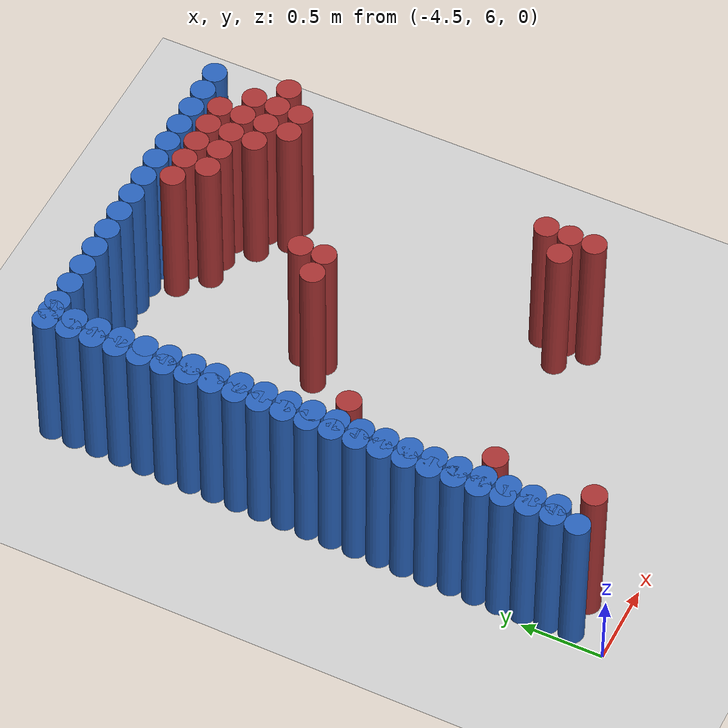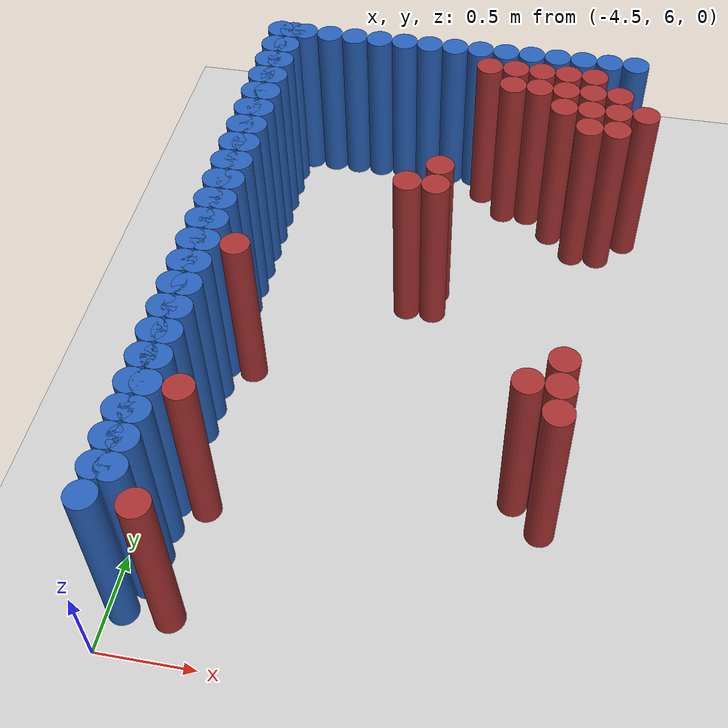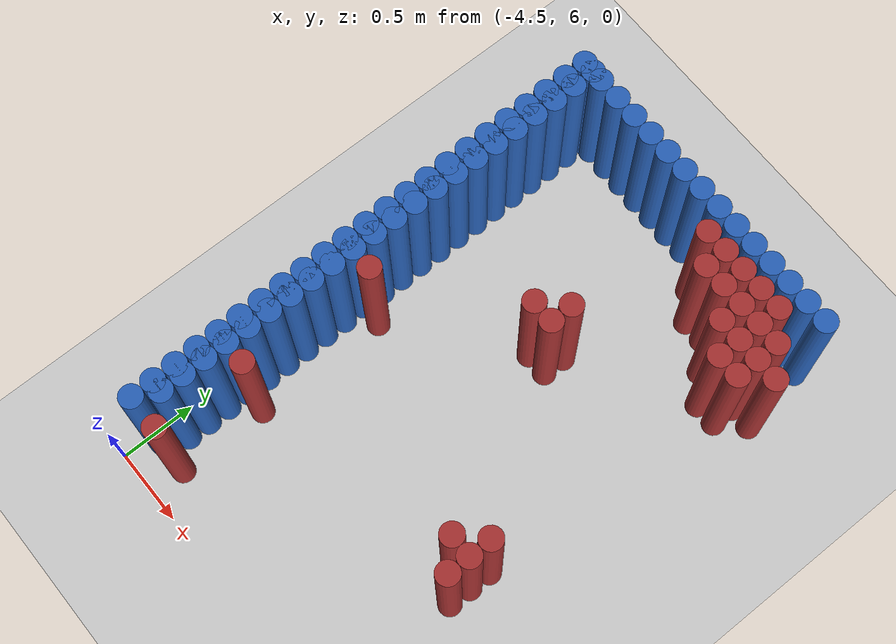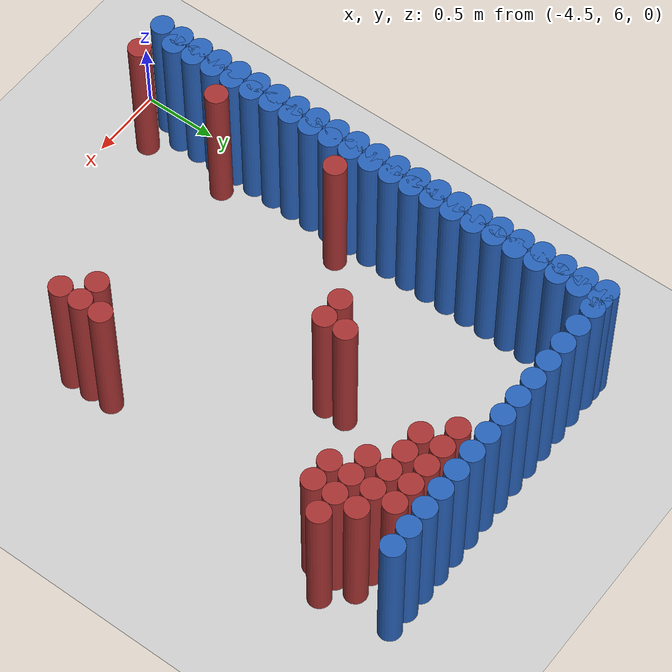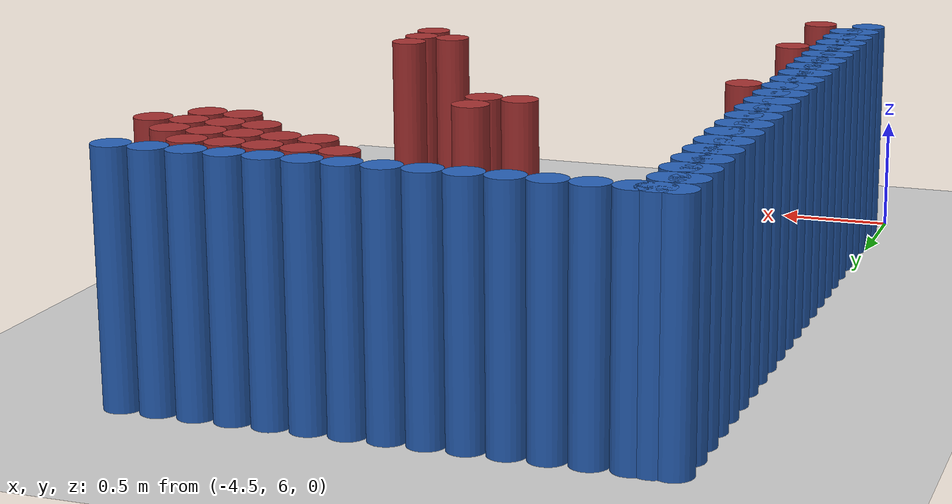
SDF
<sdf version="1.6">
 <world name="barn_world">
  <model name="ground_plane">
   <static>1</static>
   <link name="link">
    <collision name="collision">
     <geometry><plane><normal>0 0 1</normal><size>100 100</size></plane></geometry>
    </collision>
    <visual name="visual">
     <geometry><plane><normal>0 0 1</normal><size>100 100</size></plane></geometry>
     <material>
      <script><uri>file://media/materials/scripts/gazebo.material</uri><name>Gazebo/Grey</name></script>
     </material>
    </visual>
   </link>
  </model>
  <model name="unit_cylinder_134">
   <static>1</static>
   <pose>-4.3500 6.3750 0.5 0 0 0</pose>
   <link name="link">
    <collision name="collision">
     <geometry><cylinder><radius>0.075</radius><length>1</length></cylinder></geometry>
    </collision>
    <visual name="visual">
     <geometry><cylinder><radius>0.075</radius><length>1</length></cylinder></geometry>
     <material><ambient>0.152 0.379 0.72 1</ambient><diffuse>0.152 0.379 0.72 1</diffuse></material>
    </visual>
   </link>
  </model>
  <model name="unit_cylinder_135">
   <static>1</static>
   <pose>-4.3500 6.5250 0.5 0 0 0</pose>
   <link name="link">
    <collision name="collision">
     <geometry><cylinder><radius>0.075</radius><length>1</length></cylinder></geometry>
    </collision>
    <visual name="visual">
     <geometry><cylinder><radius>0.075</radius><length>1</length></cylinder></geometry>
     <material><ambient>0.152 0.379 0.72 1</ambient><diffuse>0.152 0.379 0.72 1</diffuse></material>
    </visual>
   </link>
  </model>
  <model name="unit_cylinder_136">
   <static>1</static>
   <pose>-4.3500 6.6750 0.5 0 0 0</pose>
   <link name="link">
    <collision name="collision">
     <geometry><cylinder><radius>0.075</radius><length>1</length></cylinder></geometry>
    </collision>
    <visual name="visual">
     <geometry><cylinder><radius>0.075</radius><length>1</length></cylinder></geometry>
     <material><ambient>0.152 0.379 0.72 1</ambient><diffuse>0.152 0.379 0.72 1</diffuse></material>
    </visual>
   </link>
  </model>
  <model name="unit_cylinder_137">
   <static>1</static>
   <pose>-4.3500 6.8250 0.5 0 0 0</pose>
   <link name="link">
    <collision name="collision">
     <geometry><cylinder><radius>0.075</radius><length>1</length></cylinder></geometry>
    </collision>
    <visual name="visual">
     <geometry><cylinder><radius>0.075</radius><length>1</length></cylinder></geometry>
     <material><ambient>0.152 0.379 0.72 1</ambient><diffuse>0.152 0.379 0.72 1</diffuse></material>
    </visual>
   </link>
  </model>
  <model name="unit_cylinder_138">
   <static>1</static>
   <pose>-4.3500 6.9750 0.5 0 0 0</pose>
   <link name="link">
    <collision name="collision">
     <geometry><cylinder><radius>0.075</radius><length>1</length></cylinder></geometry>
    </collision>
    <visual name="visual">
     <geometry><cylinder><radius>0.075</radius><length>1</length></cylinder></geometry>
     <material><ambient>0.152 0.379 0.72 1</ambient><diffuse>0.152 0.379 0.72 1</diffuse></material>
    </visual>
   </link>
  </model>
  <model name="unit_cylinder_139">
   <static>1</static>
   <pose>-4.3500 7.1250 0.5 0 0 0</pose>
   <link name="link">
    <collision name="collision">
     <geometry><cylinder><radius>0.075</radius><length>1</length></cylinder></geometry>
    </collision>
    <visual name="visual">
     <geometry><cylinder><radius>0.075</radius><length>1</length></cylinder></geometry>
     <material><ambient>0.152 0.379 0.72 1</ambient><diffuse>0.152 0.379 0.72 1</diffuse></material>
    </visual>
   </link>
  </model>
  <model name="unit_cylinder_140">
   <static>1</static>
   <pose>-4.3500 7.2750 0.5 0 0 0</pose>
   <link name="link">
    <collision name="collision">
     <geometry><cylinder><radius>0.075</radius><length>1</length></cylinder></geometry>
    </collision>
    <visual name="visual">
     <geometry><cylinder><radius>0.075</radius><length>1</length></cylinder></geometry>
     <material><ambient>0.152 0.379 0.72 1</ambient><diffuse>0.152 0.379 0.72 1</diffuse></material>
    </visual>
   </link>
  </model>
  <model name="unit_cylinder_141">
   <static>1</static>
   <pose>-4.3500 7.4250 0.5 0 0 0</pose>
   <link name="link">
    <collision name="collision">
     <geometry><cylinder><radius>0.075</radius><length>1</length></cylinder></geometry>
    </collision>
    <visual name="visual">
     <geometry><cylinder><radius>0.075</radius><length>1</length></cylinder></geometry>
     <material><ambient>0.152 0.379 0.72 1</ambient><diffuse>0.152 0.379 0.72 1</diffuse></material>
    </visual>
   </link>
  </model>
  <model name="unit_cylinder_142">
   <static>1</static>
   <pose>-4.3500 7.5750 0.5 0 0 0</pose>
   <link name="link">
    <collision name="collision">
     <geometry><cylinder><radius>0.075</radius><length>1</length></cylinder></geometry>
    </collision>
    <visual name="visual">
     <geometry><cylinder><radius>0.075</radius><length>1</length></cylinder></geometry>
     <material><ambient>0.152 0.379 0.72 1</ambient><diffuse>0.152 0.379 0.72 1</diffuse></material>
    </visual>
   </link>
  </model>
  <model name="unit_cylinder_143">
   <static>1</static>
   <pose>-4.3500 7.7250 0.5 0 0 0</pose>
   <link name="link">
    <collision name="collision">
     <geometry><cylinder><radius>0.075</radius><length>1</length></cylinder></geometry>
    </collision>
    <visual name="visual">
     <geometry><cylinder><radius>0.075</radius><length>1</length></cylinder></geometry>
     <material><ambient>0.152 0.379 0.72 1</ambient><diffuse>0.152 0.379 0.72 1</diffuse></material>
    </visual>
   </link>
  </model>
  <model name="unit_cylinder_144">
   <static>1</static>
   <pose>-4.3500 7.8750 0.5 0 0 0</pose>
   <link name="link">
    <collision name="collision">
     <geometry><cylinder><radius>0.075</radius><length>1</length></cylinder></geometry>
    </collision>
    <visual name="visual">
     <geometry><cylinder><radius>0.075</radius><length>1</length></cylinder></geometry>
     <material><ambient>0.152 0.379 0.72 1</ambient><diffuse>0.152 0.379 0.72 1</diffuse></material>
    </visual>
   </link>
  </model>
  <model name="unit_cylinder_145">
   <static>1</static>
   <pose>-4.3500 8.0250 0.5 0 0 0</pose>
   <link name="link">
    <collision name="collision">
     <geometry><cylinder><radius>0.075</radius><length>1</length></cylinder></geometry>
    </collision>
    <visual name="visual">
     <geometry><cylinder><radius>0.075</radius><length>1</length></cylinder></geometry>
     <material><ambient>0.152 0.379 0.72 1</ambient><diffuse>0.152 0.379 0.72 1</diffuse></material>
    </visual>
   </link>
  </model>
  <model name="unit_cylinder_146">
   <static>1</static>
   <pose>-4.3500 8.1750 0.5 0 0 0</pose>
   <link name="link">
    <collision name="collision">
     <geometry><cylinder><radius>0.075</radius><length>1</length></cylinder></geometry>
    </collision>
    <visual name="visual">
     <geometry><cylinder><radius>0.075</radius><length>1</length></cylinder></geometry>
     <material><ambient>0.152 0.379 0.72 1</ambient><diffuse>0.152 0.379 0.72 1</diffuse></material>
    </visual>
   </link>
  </model>
  <model name="unit_cylinder_147">
   <static>1</static>
   <pose>-4.3500 8.3250 0.5 0 0 0</pose>
   <link name="link">
    <collision name="collision">
     <geometry><cylinder><radius>0.075</radius><length>1</length></cylinder></geometry>
    </collision>
    <visual name="visual">
     <geometry><cylinder><radius>0.075</radius><length>1</length></cylinder></geometry>
     <material><ambient>0.152 0.379 0.72 1</ambient><diffuse>0.152 0.379 0.72 1</diffuse></material>
    </visual>
   </link>
  </model>
  <model name="unit_cylinder_148">
   <static>1</static>
   <pose>-4.3500 8.4750 0.5 0 0 0</pose>
   <link name="link">
    <collision name="collision">
     <geometry><cylinder><radius>0.075</radius><length>1</length></cylinder></geometry>
    </collision>
    <visual name="visual">
     <geometry><cylinder><radius>0.075</radius><length>1</length></cylinder></geometry>
     <material><ambient>0.152 0.379 0.72 1</ambient><diffuse>0.152 0.379 0.72 1</diffuse></material>
    </visual>
   </link>
  </model>
  <model name="unit_cylinder_149">
   <static>1</static>
   <pose>-4.3500 8.6250 0.5 0 0 0</pose>
   <link name="link">
    <collision name="collision">
     <geometry><cylinder><radius>0.075</radius><length>1</length></cylinder></geometry>
    </collision>
    <visual name="visual">
     <geometry><cylinder><radius>0.075</radius><length>1</length></cylinder></geometry>
     <material><ambient>0.152 0.379 0.72 1</ambient><diffuse>0.152 0.379 0.72 1</diffuse></material>
    </visual>
   </link>
  </model>
  <model name="unit_cylinder_150">
   <static>1</static>
   <pose>-4.3500 8.7750 0.5 0 0 0</pose>
   <link name="link">
    <collision name="collision">
     <geometry><cylinder><radius>0.075</radius><length>1</length></cylinder></geometry>
    </collision>
    <visual name="visual">
     <geometry><cylinder><radius>0.075</radius><length>1</length></cylinder></geometry>
     <material><ambient>0.152 0.379 0.72 1</ambient><diffuse>0.152 0.379 0.72 1</diffuse></material>
    </visual>
   </link>
  </model>
  <model name="unit_cylinder_151">
   <static>1</static>
   <pose>-4.3500 8.9250 0.5 0 0 0</pose>
   <link name="link">
    <collision name="collision">
     <geometry><cylinder><radius>0.075</radius><length>1</length></cylinder></geometry>
    </collision>
    <visual name="visual">
     <geometry><cylinder><radius>0.075</radius><length>1</length></cylinder></geometry>
     <material><ambient>0.152 0.379 0.72 1</ambient><diffuse>0.152 0.379 0.72 1</diffuse></material>
    </visual>
   </link>
  </model>
  <model name="unit_cylinder_152">
   <static>1</static>
   <pose>-4.3500 9.0750 0.5 0 0 0</pose>
   <link name="link">
    <collision name="collision">
     <geometry><cylinder><radius>0.075</radius><length>1</length></cylinder></geometry>
    </collision>
    <visual name="visual">
     <geometry><cylinder><radius>0.075</radius><length>1</length></cylinder></geometry>
     <material><ambient>0.152 0.379 0.72 1</ambient><diffuse>0.152 0.379 0.72 1</diffuse></material>
    </visual>
   </link>
  </model>
  <model name="unit_cylinder_153">
   <static>1</static>
   <pose>-4.3500 9.2250 0.5 0 0 0</pose>
   <link name="link">
    <collision name="collision">
     <geometry><cylinder><radius>0.075</radius><length>1</length></cylinder></geometry>
    </collision>
    <visual name="visual">
     <geometry><cylinder><radius>0.075</radius><length>1</length></cylinder></geometry>
     <material><ambient>0.152 0.379 0.72 1</ambient><diffuse>0.152 0.379 0.72 1</diffuse></material>
    </visual>
   </link>
  </model>
  <model name="unit_cylinder_154">
   <static>1</static>
   <pose>-4.3500 9.3750 0.5 0 0 0</pose>
   <link name="link">
    <collision name="collision">
     <geometry><cylinder><radius>0.075</radius><length>1</length></cylinder></geometry>
    </collision>
    <visual name="visual">
     <geometry><cylinder><radius>0.075</radius><length>1</length></cylinder></geometry>
     <material><ambient>0.152 0.379 0.72 1</ambient><diffuse>0.152 0.379 0.72 1</diffuse></material>
    </visual>
   </link>
  </model>
  <model name="unit_cylinder_155">
   <static>1</static>
   <pose>-4.3500 9.5250 0.5 0 0 0</pose>
   <link name="link">
    <collision name="collision">
     <geometry><cylinder><radius>0.075</radius><length>1</length></cylinder></geometry>
    </collision>
    <visual name="visual">
     <geometry><cylinder><radius>0.075</radius><length>1</length></cylinder></geometry>
     <material><ambient>0.152 0.379 0.72 1</ambient><diffuse>0.152 0.379 0.72 1</diffuse></material>
    </visual>
   </link>
  </model>
  <model name="unit_cylinder_160">
   <static>1</static>
   <pose>-4.2000 6.2250 0.5 0 0 0</pose>
   <link name="link">
    <collision name="collision">
     <geometry><cylinder><radius>0.075</radius><length>1</length></cylinder></geometry>
    </collision>
    <visual name="visual">
     <geometry><cylinder><radius>0.075</radius><length>1</length></cylinder></geometry>
     <material><ambient>0.648 0.192 0.192 1</ambient><diffuse>0.648 0.192 0.192 1</diffuse></material>
    </visual>
   </link>
  </model>
  <model name="unit_cylinder_161">
   <static>1</static>
   <pose>-4.2000 6.8250 0.5 0 0 0</pose>
   <link name="link">
    <collision name="collision">
     <geometry><cylinder><radius>0.075</radius><length>1</length></cylinder></geometry>
    </collision>
    <visual name="visual">
     <geometry><cylinder><radius>0.075</radius><length>1</length></cylinder></geometry>
     <material><ambient>0.648 0.192 0.192 1</ambient><diffuse>0.648 0.192 0.192 1</diffuse></material>
    </visual>
   </link>
  </model>
  <model name="unit_cylinder_162">
   <static>1</static>
   <pose>-4.2000 7.7250 0.5 0 0 0</pose>
   <link name="link">
    <collision name="collision">
     <geometry><cylinder><radius>0.075</radius><length>1</length></cylinder></geometry>
    </collision>
    <visual name="visual">
     <geometry><cylinder><radius>0.075</radius><length>1</length></cylinder></geometry>
     <material><ambient>0.648 0.192 0.192 1</ambient><diffuse>0.648 0.192 0.192 1</diffuse></material>
    </visual>
   </link>
  </model>
  <model name="unit_cylinder_165">
   <static>1</static>
   <pose>-3.4500 8.3250 0.5 0 0 0</pose>
   <link name="link">
    <collision name="collision">
     <geometry><cylinder><radius>0.075</radius><length>1</length></cylinder></geometry>
    </collision>
    <visual name="visual">
     <geometry><cylinder><radius>0.075</radius><length>1</length></cylinder></geometry>
     <material><ambient>0.648 0.192 0.192 1</ambient><diffuse>0.648 0.192 0.192 1</diffuse></material>
    </visual>
   </link>
  </model>
  <model name="unit_cylinder_168">
   <static>1</static>
   <pose>-3.3000 8.3250 0.5 0 0 0</pose>
   <link name="link">
    <collision name="collision">
     <geometry><cylinder><radius>0.075</radius><length>1</length></cylinder></geometry>
    </collision>
    <visual name="visual">
     <geometry><cylinder><radius>0.075</radius><length>1</length></cylinder></geometry>
     <material><ambient>0.648 0.192 0.192 1</ambient><diffuse>0.648 0.192 0.192 1</diffuse></material>
    </visual>
   </link>
  </model>
  <model name="unit_cylinder_169">
   <static>1</static>
   <pose>-3.3000 8.4750 0.5 0 0 0</pose>
   <link name="link">
    <collision name="collision">
     <geometry><cylinder><radius>0.075</radius><length>1</length></cylinder></geometry>
    </collision>
    <visual name="visual">
     <geometry><cylinder><radius>0.075</radius><length>1</length></cylinder></geometry>
     <material><ambient>0.648 0.192 0.192 1</ambient><diffuse>0.648 0.192 0.192 1</diffuse></material>
    </visual>
   </link>
  </model>
  <model name="unit_cylinder_170">
   <static>1</static>
   <pose>-3.1500 9.3750 0.5 0 0 0</pose>
   <link name="link">
    <collision name="collision">
     <geometry><cylinder><radius>0.075</radius><length>1</length></cylinder></geometry>
    </collision>
    <visual name="visual">
     <geometry><cylinder><radius>0.075</radius><length>1</length></cylinder></geometry>
     <material><ambient>0.648 0.192 0.192 1</ambient><diffuse>0.648 0.192 0.192 1</diffuse></material>
    </visual>
   </link>
  </model>
  <model name="unit_cylinder_173">
   <static>1</static>
   <pose>-3.0000 9.2250 0.5 0 0 0</pose>
   <link name="link">
    <collision name="collision">
     <geometry><cylinder><radius>0.075</radius><length>1</length></cylinder></geometry>
    </collision>
    <visual name="visual">
     <geometry><cylinder><radius>0.075</radius><length>1</length></cylinder></geometry>
     <material><ambient>0.648 0.192 0.192 1</ambient><diffuse>0.648 0.192 0.192 1</diffuse></material>
    </visual>
   </link>
  </model>
  <model name="unit_cylinder_174">
   <static>1</static>
   <pose>-3.0000 9.3750 0.5 0 0 0</pose>
   <link name="link">
    <collision name="collision">
     <geometry><cylinder><radius>0.075</radius><length>1</length></cylinder></geometry>
    </collision>
    <visual name="visual">
     <geometry><cylinder><radius>0.075</radius><length>1</length></cylinder></geometry>
     <material><ambient>0.648 0.192 0.192 1</ambient><diffuse>0.648 0.192 0.192 1</diffuse></material>
    </visual>
   </link>
  </model>
  <model name="unit_cylinder_176">
   <static>1</static>
   <pose>-2.8500 9.2250 0.5 0 0 0</pose>
   <link name="link">
    <collision name="collision">
     <geometry><cylinder><radius>0.075</radius><length>1</length></cylinder></geometry>
    </collision>
    <visual name="visual">
     <geometry><cylinder><radius>0.075</radius><length>1</length></cylinder></geometry>
     <material><ambient>0.648 0.192 0.192 1</ambient><diffuse>0.648 0.192 0.192 1</diffuse></material>
    </visual>
   </link>
  </model>
  <model name="unit_cylinder_177">
   <static>1</static>
   <pose>-2.8500 9.3750 0.5 0 0 0</pose>
   <link name="link">
    <collision name="collision">
     <geometry><cylinder><radius>0.075</radius><length>1</length></cylinder></geometry>
    </collision>
    <visual name="visual">
     <geometry><cylinder><radius>0.075</radius><length>1</length></cylinder></geometry>
     <material><ambient>0.648 0.192 0.192 1</ambient><diffuse>0.648 0.192 0.192 1</diffuse></material>
    </visual>
   </link>
  </model>
  <model name="unit_cylinder_178">
   <static>1</static>
   <pose>-2.7000 7.1250 0.5 0 0 0</pose>
   <link name="link">
    <collision name="collision">
     <geometry><cylinder><radius>0.075</radius><length>1</length></cylinder></geometry>
    </collision>
    <visual name="visual">
     <geometry><cylinder><radius>0.075</radius><length>1</length></cylinder></geometry>
     <material><ambient>0.648 0.192 0.192 1</ambient><diffuse>0.648 0.192 0.192 1</diffuse></material>
    </visual>
   </link>
  </model>
  <model name="unit_cylinder_179">
   <static>1</static>
   <pose>-2.7000 9.0750 0.5 0 0 0</pose>
   <link name="link">
    <collision name="collision">
     <geometry><cylinder><radius>0.075</radius><length>1</length></cylinder></geometry>
    </collision>
    <visual name="visual">
     <geometry><cylinder><radius>0.075</radius><length>1</length></cylinder></geometry>
     <material><ambient>0.648 0.192 0.192 1</ambient><diffuse>0.648 0.192 0.192 1</diffuse></material>
    </visual>
   </link>
  </model>
  <model name="unit_cylinder_180">
   <static>1</static>
   <pose>-2.7000 9.2250 0.5 0 0 0</pose>
   <link name="link">
    <collision name="collision">
     <geometry><cylinder><radius>0.075</radius><length>1</length></cylinder></geometry>
    </collision>
    <visual name="visual">
     <geometry><cylinder><radius>0.075</radius><length>1</length></cylinder></geometry>
     <material><ambient>0.648 0.192 0.192 1</ambient><diffuse>0.648 0.192 0.192 1</diffuse></material>
    </visual>
   </link>
  </model>
  <model name="unit_cylinder_181">
   <static>1</static>
   <pose>-2.7000 9.3750 0.5 0 0 0</pose>
   <link name="link">
    <collision name="collision">
     <geometry><cylinder><radius>0.075</radius><length>1</length></cylinder></geometry>
    </collision>
    <visual name="visual">
     <geometry><cylinder><radius>0.075</radius><length>1</length></cylinder></geometry>
     <material><ambient>0.648 0.192 0.192 1</ambient><diffuse>0.648 0.192 0.192 1</diffuse></material>
    </visual>
   </link>
  </model>
  <model name="unit_cylinder_182">
   <static>1</static>
   <pose>-2.5500 6.9750 0.5 0 0 0</pose>
   <link name="link">
    <collision name="collision">
     <geometry><cylinder><radius>0.075</radius><length>1</length></cylinder></geometry>
    </collision>
    <visual name="visual">
     <geometry><cylinder><radius>0.075</radius><length>1</length></cylinder></geometry>
     <material><ambient>0.648 0.192 0.192 1</ambient><diffuse>0.648 0.192 0.192 1</diffuse></material>
    </visual>
   </link>
  </model>
  <model name="unit_cylinder_183">
   <static>1</static>
   <pose>-2.5500 7.1250 0.5 0 0 0</pose>
   <link name="link">
    <collision name="collision">
     <geometry><cylinder><radius>0.075</radius><length>1</length></cylinder></geometry>
    </collision>
    <visual name="visual">
     <geometry><cylinder><radius>0.075</radius><length>1</length></cylinder></geometry>
     <material><ambient>0.648 0.192 0.192 1</ambient><diffuse>0.648 0.192 0.192 1</diffuse></material>
    </visual>
   </link>
  </model>
  <model name="unit_cylinder_184">
   <static>1</static>
   <pose>-2.5500 7.2750 0.5 0 0 0</pose>
   <link name="link">
    <collision name="collision">
     <geometry><cylinder><radius>0.075</radius><length>1</length></cylinder></geometry>
    </collision>
    <visual name="visual">
     <geometry><cylinder><radius>0.075</radius><length>1</length></cylinder></geometry>
     <material><ambient>0.648 0.192 0.192 1</ambient><diffuse>0.648 0.192 0.192 1</diffuse></material>
    </visual>
   </link>
  </model>
  <model name="unit_cylinder_185">
   <static>1</static>
   <pose>-2.5500 8.9250 0.5 0 0 0</pose>
   <link name="link">
    <collision name="collision">
     <geometry><cylinder><radius>0.075</radius><length>1</length></cylinder></geometry>
    </collision>
    <visual name="visual">
     <geometry><cylinder><radius>0.075</radius><length>1</length></cylinder></geometry>
     <material><ambient>0.648 0.192 0.192 1</ambient><diffuse>0.648 0.192 0.192 1</diffuse></material>
    </visual>
   </link>
  </model>
  <model name="unit_cylinder_186">
   <static>1</static>
   <pose>-2.5500 9.0750 0.5 0 0 0</pose>
   <link name="link">
    <collision name="collision">
     <geometry><cylinder><radius>0.075</radius><length>1</length></cylinder></geometry>
    </collision>
    <visual name="visual">
     <geometry><cylinder><radius>0.075</radius><length>1</length></cylinder></geometry>
     <material><ambient>0.648 0.192 0.192 1</ambient><diffuse>0.648 0.192 0.192 1</diffuse></material>
    </visual>
   </link>
  </model>
  <model name="unit_cylinder_187">
   <static>1</static>
   <pose>-2.5500 9.2250 0.5 0 0 0</pose>
   <link name="link">
    <collision name="collision">
     <geometry><cylinder><radius>0.075</radius><length>1</length></cylinder></geometry>
    </collision>
    <visual name="visual">
     <geometry><cylinder><radius>0.075</radius><length>1</length></cylinder></geometry>
     <material><ambient>0.648 0.192 0.192 1</ambient><diffuse>0.648 0.192 0.192 1</diffuse></material>
    </visual>
   </link>
  </model>
  <model name="unit_cylinder_188">
   <static>1</static>
   <pose>-2.5500 9.3750 0.5 0 0 0</pose>
   <link name="link">
    <collision name="collision">
     <geometry><cylinder><radius>0.075</radius><length>1</length></cylinder></geometry>
    </collision>
    <visual name="visual">
     <geometry><cylinder><radius>0.075</radius><length>1</length></cylinder></geometry>
     <material><ambient>0.648 0.192 0.192 1</ambient><diffuse>0.648 0.192 0.192 1</diffuse></material>
    </visual>
   </link>
  </model>
  <model name="unit_cylinder_189">
   <static>1</static>
   <pose>-2.4000 8.9250 0.5 0 0 0</pose>
   <link name="link">
    <collision name="collision">
     <geometry><cylinder><radius>0.075</radius><length>1</length></cylinder></geometry>
    </collision>
    <visual name="visual">
     <geometry><cylinder><radius>0.075</radius><length>1</length></cylinder></geometry>
     <material><ambient>0.648 0.192 0.192 1</ambient><diffuse>0.648 0.192 0.192 1</diffuse></material>
    </visual>
   </link>
  </model>
  <model name="unit_cylinder_190">
   <static>1</static>
   <pose>-2.4000 9.0750 0.5 0 0 0</pose>
   <link name="link">
    <collision name="collision">
     <geometry><cylinder><radius>0.075</radius><length>1</length></cylinder></geometry>
    </collision>
    <visual name="visual">
     <geometry><cylinder><radius>0.075</radius><length>1</length></cylinder></geometry>
     <material><ambient>0.648 0.192 0.192 1</ambient><diffuse>0.648 0.192 0.192 1</diffuse></material>
    </visual>
   </link>
  </model>
  <model name="unit_cylinder_191">
   <static>1</static>
   <pose>-2.4000 9.2250 0.5 0 0 0</pose>
   <link name="link">
    <collision name="collision">
     <geometry><cylinder><radius>0.075</radius><length>1</length></cylinder></geometry>
    </collision>
    <visual name="visual">
     <geometry><cylinder><radius>0.075</radius><length>1</length></cylinder></geometry>
     <material><ambient>0.648 0.192 0.192 1</ambient><diffuse>0.648 0.192 0.192 1</diffuse></material>
    </visual>
   </link>
  </model>
  <model name="unit_cylinder_192">
   <static>1</static>
   <pose>-2.2500 9.0750 0.5 0 0 0</pose>
   <link name="link">
    <collision name="collision">
     <geometry><cylinder><radius>0.075</radius><length>1</length></cylinder></geometry>
    </collision>
    <visual name="visual">
     <geometry><cylinder><radius>0.075</radius><length>1</length></cylinder></geometry>
     <material><ambient>0.648 0.192 0.192 1</ambient><diffuse>0.648 0.192 0.192 1</diffuse></material>
    </visual>
   </link>
  </model>
  <model name="unit_cylinder_267">
   <static>1</static>
   <pose>-2.3250 9.5250 0.5 0 0 0</pose>
   <link name="link">
    <collision name="collision">
     <geometry><cylinder><radius>0.075</radius><length>1</length></cylinder></geometry>
    </collision>
    <visual name="visual">
     <geometry><cylinder><radius>0.075</radius><length>1</length></cylinder></geometry>
     <material><ambient>0.152 0.379 0.72 1</ambient><diffuse>0.152 0.379 0.72 1</diffuse></material>
    </visual>
   </link>
  </model>
  <model name="unit_cylinder_268">
   <static>1</static>
   <pose>-2.4750 9.5250 0.5 0 0 0</pose>
   <link name="link">
    <collision name="collision">
     <geometry><cylinder><radius>0.075</radius><length>1</length></cylinder></geometry>
    </collision>
    <visual name="visual">
     <geometry><cylinder><radius>0.075</radius><length>1</length></cylinder></geometry>
     <material><ambient>0.152 0.379 0.72 1</ambient><diffuse>0.152 0.379 0.72 1</diffuse></material>
    </visual>
   </link>
  </model>
  <model name="unit_cylinder_269">
   <static>1</static>
   <pose>-2.6250 9.5250 0.5 0 0 0</pose>
   <link name="link">
    <collision name="collision">
     <geometry><cylinder><radius>0.075</radius><length>1</length></cylinder></geometry>
    </collision>
    <visual name="visual">
     <geometry><cylinder><radius>0.075</radius><length>1</length></cylinder></geometry>
     <material><ambient>0.152 0.379 0.72 1</ambient><diffuse>0.152 0.379 0.72 1</diffuse></material>
    </visual>
   </link>
  </model>
  <model name="unit_cylinder_270">
   <static>1</static>
   <pose>-2.7750 9.5250 0.5 0 0 0</pose>
   <link name="link">
    <collision name="collision">
     <geometry><cylinder><radius>0.075</radius><length>1</length></cylinder></geometry>
    </collision>
    <visual name="visual">
     <geometry><cylinder><radius>0.075</radius><length>1</length></cylinder></geometry>
     <material><ambient>0.152 0.379 0.72 1</ambient><diffuse>0.152 0.379 0.72 1</diffuse></material>
    </visual>
   </link>
  </model>
  <model name="unit_cylinder_271">
   <static>1</static>
   <pose>-2.9250 9.5250 0.5 0 0 0</pose>
   <link name="link">
    <collision name="collision">
     <geometry><cylinder><radius>0.075</radius><length>1</length></cylinder></geometry>
    </collision>
    <visual name="visual">
     <geometry><cylinder><radius>0.075</radius><length>1</length></cylinder></geometry>
     <material><ambient>0.152 0.379 0.72 1</ambient><diffuse>0.152 0.379 0.72 1</diffuse></material>
    </visual>
   </link>
  </model>
  <model name="unit_cylinder_272">
   <static>1</static>
   <pose>-3.0750 9.5250 0.5 0 0 0</pose>
   <link name="link">
    <collision name="collision">
     <geometry><cylinder><radius>0.075</radius><length>1</length></cylinder></geometry>
    </collision>
    <visual name="visual">
     <geometry><cylinder><radius>0.075</radius><length>1</length></cylinder></geometry>
     <material><ambient>0.152 0.379 0.72 1</ambient><diffuse>0.152 0.379 0.72 1</diffuse></material>
    </visual>
   </link>
  </model>
  <model name="unit_cylinder_273">
   <static>1</static>
   <pose>-3.2250 9.5250 0.5 0 0 0</pose>
   <link name="link">
    <collision name="collision">
     <geometry><cylinder><radius>0.075</radius><length>1</length></cylinder></geometry>
    </collision>
    <visual name="visual">
     <geometry><cylinder><radius>0.075</radius><length>1</length></cylinder></geometry>
     <material><ambient>0.152 0.379 0.72 1</ambient><diffuse>0.152 0.379 0.72 1</diffuse></material>
    </visual>
   </link>
  </model>
  <model name="unit_cylinder_274">
   <static>1</static>
   <pose>-3.3750 9.5250 0.5 0 0 0</pose>
   <link name="link">
    <collision name="collision">
     <geometry><cylinder><radius>0.075</radius><length>1</length></cylinder></geometry>
    </collision>
    <visual name="visual">
     <geometry><cylinder><radius>0.075</radius><length>1</length></cylinder></geometry>
     <material><ambient>0.152 0.379 0.72 1</ambient><diffuse>0.152 0.379 0.72 1</diffuse></material>
    </visual>
   </link>
  </model>
  <model name="unit_cylinder_275">
   <static>1</static>
   <pose>-3.5250 9.5250 0.5 0 0 0</pose>
   <link name="link">
    <collision name="collision">
     <geometry><cylinder><radius>0.075</radius><length>1</length></cylinder></geometry>
    </collision>
    <visual name="visual">
     <geometry><cylinder><radius>0.075</radius><length>1</length></cylinder></geometry>
     <material><ambient>0.152 0.379 0.72 1</ambient><diffuse>0.152 0.379 0.72 1</diffuse></material>
    </visual>
   </link>
  </model>
  <model name="unit_cylinder_276">
   <static>1</static>
   <pose>-3.6750 9.5250 0.5 0 0 0</pose>
   <link name="link">
    <collision name="collision">
     <geometry><cylinder><radius>0.075</radius><length>1</length></cylinder></geometry>
    </collision>
    <visual name="visual">
     <geometry><cylinder><radius>0.075</radius><length>1</length></cylinder></geometry>
     <material><ambient>0.152 0.379 0.72 1</ambient><diffuse>0.152 0.379 0.72 1</diffuse></material>
    </visual>
   </link>
  </model>
  <model name="unit_cylinder_277">
   <static>1</static>
   <pose>-3.8250 9.5250 0.5 0 0 0</pose>
   <link name="link">
    <collision name="collision">
     <geometry><cylinder><radius>0.075</radius><length>1</length></cylinder></geometry>
    </collision>
    <visual name="visual">
     <geometry><cylinder><radius>0.075</radius><length>1</length></cylinder></geometry>
     <material><ambient>0.152 0.379 0.72 1</ambient><diffuse>0.152 0.379 0.72 1</diffuse></material>
    </visual>
   </link>
  </model>
  <model name="unit_cylinder_278">
   <static>1</static>
   <pose>-3.9750 9.5250 0.5 0 0 0</pose>
   <link name="link">
    <collision name="collision">
     <geometry><cylinder><radius>0.075</radius><length>1</length></cylinder></geometry>
    </collision>
    <visual name="visual">
     <geometry><cylinder><radius>0.075</radius><length>1</length></cylinder></geometry>
     <material><ambient>0.152 0.379 0.72 1</ambient><diffuse>0.152 0.379 0.72 1</diffuse></material>
    </visual>
   </link>
  </model>
  <model name="unit_cylinder_279">
   <static>1</static>
   <pose>-4.1250 9.5250 0.5 0 0 0</pose>
   <link name="link">
    <collision name="collision">
     <geometry><cylinder><radius>0.075</radius><length>1</length></cylinder></geometry>
    </collision>
    <visual name="visual">
     <geometry><cylinder><radius>0.075</radius><length>1</length></cylinder></geometry>
     <material><ambient>0.152 0.379 0.72 1</ambient><diffuse>0.152 0.379 0.72 1</diffuse></material>
    </visual>
   </link>
  </model>
  <model name="unit_cylinder_280">
   <static>1</static>
   <pose>-4.2750 9.5250 0.5 0 0 0</pose>
   <link name="link">
    <collision name="collision">
     <geometry><cylinder><radius>0.075</radius><length>1</length></cylinder></geometry>
    </collision>
    <visual name="visual">
     <geometry><cylinder><radius>0.075</radius><length>1</length></cylinder></geometry>
     <material><ambient>0.152 0.379 0.72 1</ambient><diffuse>0.152 0.379 0.72 1</diffuse></material>
    </visual>
   </link>
  </model>
  <model name="unit_cylinder_281">
   <static>1</static>
   <pose>-4.4250 9.5250 0.5 0 0 0</pose>
   <link name="link">
    <collision name="collision">
     <geometry><cylinder><radius>0.075</radius><length>1</length></cylinder></geometry>
    </collision>
    <visual name="visual">
     <geometry><cylinder><radius>0.075</radius><length>1</length></cylinder></geometry>
     <material><ambient>0.152 0.379 0.72 1</ambient><diffuse>0.152 0.379 0.72 1</diffuse></material>
    </visual>
   </link>
  </model>
  <model name="unit_cylinder_297">
   <static>1</static>
   <pose>-4.4250 6.2250 0.5 0 0 0</pose>
   <link name="link">
    <collision name="collision">
     <geometry><cylinder><radius>0.075</radius><length>1</length></cylinder></geometry>
    </collision>
    <visual name="visual">
     <geometry><cylinder><radius>0.075</radius><length>1</length></cylinder></geometry>
     <material><ambient>0.152 0.379 0.72 1</ambient><diffuse>0.152 0.379 0.72 1</diffuse></material>
    </visual>
   </link>
  </model>
  <model name="unit_cylinder_299">
   <static>1</static>
   <pose>-4.4250 6.3750 0.5 0 0 0</pose>
   <link name="link">
    <collision name="collision">
     <geometry><cylinder><radius>0.075</radius><length>1</length></cylinder></geometry>
    </collision>
    <visual name="visual">
     <geometry><cylinder><radius>0.075</radius><length>1</length></cylinder></geometry>
     <material><ambient>0.152 0.379 0.72 1</ambient><diffuse>0.152 0.379 0.72 1</diffuse></material>
    </visual>
   </link>
  </model>
  <model name="unit_cylinder_301">
   <static>1</static>
   <pose>-4.4250 6.5250 0.5 0 0 0</pose>
   <link name="link">
    <collision name="collision">
     <geometry><cylinder><radius>0.075</radius><length>1</length></cylinder></geometry>
    </collision>
    <visual name="visual">
     <geometry><cylinder><radius>0.075</radius><length>1</length></cylinder></geometry>
     <material><ambient>0.152 0.379 0.72 1</ambient><diffuse>0.152 0.379 0.72 1</diffuse></material>
    </visual>
   </link>
  </model>
  <model name="unit_cylinder_303">
   <static>1</static>
   <pose>-4.4250 6.6750 0.5 0 0 0</pose>
   <link name="link">
    <collision name="collision">
     <geometry><cylinder><radius>0.075</radius><length>1</length></cylinder></geometry>
    </collision>
    <visual name="visual">
     <geometry><cylinder><radius>0.075</radius><length>1</length></cylinder></geometry>
     <material><ambient>0.152 0.379 0.72 1</ambient><diffuse>0.152 0.379 0.72 1</diffuse></material>
    </visual>
   </link>
  </model>
  <model name="unit_cylinder_305">
   <static>1</static>
   <pose>-4.4250 6.8250 0.5 0 0 0</pose>
   <link name="link">
    <collision name="collision">
     <geometry><cylinder><radius>0.075</radius><length>1</length></cylinder></geometry>
    </collision>
    <visual name="visual">
     <geometry><cylinder><radius>0.075</radius><length>1</length></cylinder></geometry>
     <material><ambient>0.152 0.379 0.72 1</ambient><diffuse>0.152 0.379 0.72 1</diffuse></material>
    </visual>
   </link>
  </model>
  <model name="unit_cylinder_307">
   <static>1</static>
   <pose>-4.4250 6.9750 0.5 0 0 0</pose>
   <link name="link">
    <collision name="collision">
     <geometry><cylinder><radius>0.075</radius><length>1</length></cylinder></geometry>
    </collision>
    <visual name="visual">
     <geometry><cylinder><radius>0.075</radius><length>1</length></cylinder></geometry>
     <material><ambient>0.152 0.379 0.72 1</ambient><diffuse>0.152 0.379 0.72 1</diffuse></material>
    </visual>
   </link>
  </model>
  <model name="unit_cylinder_309">
   <static>1</static>
   <pose>-4.4250 7.1250 0.5 0 0 0</pose>
   <link name="link">
    <collision name="collision">
     <geometry><cylinder><radius>0.075</radius><length>1</length></cylinder></geometry>
    </collision>
    <visual name="visual">
     <geometry><cylinder><radius>0.075</radius><length>1</length></cylinder></geometry>
     <material><ambient>0.152 0.379 0.72 1</ambient><diffuse>0.152 0.379 0.72 1</diffuse></material>
    </visual>
   </link>
  </model>
  <model name="unit_cylinder_311">
   <static>1</static>
   <pose>-4.4250 7.2750 0.5 0 0 0</pose>
   <link name="link">
    <collision name="collision">
     <geometry><cylinder><radius>0.075</radius><length>1</length></cylinder></geometry>
    </collision>
    <visual name="visual">
     <geometry><cylinder><radius>0.075</radius><length>1</length></cylinder></geometry>
     <material><ambient>0.152 0.379 0.72 1</ambient><diffuse>0.152 0.379 0.72 1</diffuse></material>
    </visual>
   </link>
  </model>
  <model name="unit_cylinder_313">
   <static>1</static>
   <pose>-4.4250 7.4250 0.5 0 0 0</pose>
   <link name="link">
    <collision name="collision">
     <geometry><cylinder><radius>0.075</radius><length>1</length></cylinder></geometry>
    </collision>
    <visual name="visual">
     <geometry><cylinder><radius>0.075</radius><length>1</length></cylinder></geometry>
     <material><ambient>0.152 0.379 0.72 1</ambient><diffuse>0.152 0.379 0.72 1</diffuse></material>
    </visual>
   </link>
  </model>
  <model name="unit_cylinder_315">
   <static>1</static>
   <pose>-4.4250 7.5750 0.5 0 0 0</pose>
   <link name="link">
    <collision name="collision">
     <geometry><cylinder><radius>0.075</radius><length>1</length></cylinder></geometry>
    </collision>
    <visual name="visual">
     <geometry><cylinder><radius>0.075</radius><length>1</length></cylinder></geometry>
     <material><ambient>0.152 0.379 0.72 1</ambient><diffuse>0.152 0.379 0.72 1</diffuse></material>
    </visual>
   </link>
  </model>
  <model name="unit_cylinder_317">
   <static>1</static>
   <pose>-4.4250 7.7250 0.5 0 0 0</pose>
   <link name="link">
    <collision name="collision">
     <geometry><cylinder><radius>0.075</radius><length>1</length></cylinder></geometry>
    </collision>
    <visual name="visual">
     <geometry><cylinder><radius>0.075</radius><length>1</length></cylinder></geometry>
     <material><ambient>0.152 0.379 0.72 1</ambient><diffuse>0.152 0.379 0.72 1</diffuse></material>
    </visual>
   </link>
  </model>
  <model name="unit_cylinder_319">
   <static>1</static>
   <pose>-4.4250 7.8750 0.5 0 0 0</pose>
   <link name="link">
    <collision name="collision">
     <geometry><cylinder><radius>0.075</radius><length>1</length></cylinder></geometry>
    </collision>
    <visual name="visual">
     <geometry><cylinder><radius>0.075</radius><length>1</length></cylinder></geometry>
     <material><ambient>0.152 0.379 0.72 1</ambient><diffuse>0.152 0.379 0.72 1</diffuse></material>
    </visual>
   </link>
  </model>
  <model name="unit_cylinder_321">
   <static>1</static>
   <pose>-4.4250 8.0250 0.5 0 0 0</pose>
   <link name="link">
    <collision name="collision">
     <geometry><cylinder><radius>0.075</radius><length>1</length></cylinder></geometry>
    </collision>
    <visual name="visual">
     <geometry><cylinder><radius>0.075</radius><length>1</length></cylinder></geometry>
     <material><ambient>0.152 0.379 0.72 1</ambient><diffuse>0.152 0.379 0.72 1</diffuse></material>
    </visual>
   </link>
  </model>
  <model name="unit_cylinder_323">
   <static>1</static>
   <pose>-4.4250 8.1750 0.5 0 0 0</pose>
   <link name="link">
    <collision name="collision">
     <geometry><cylinder><radius>0.075</radius><length>1</length></cylinder></geometry>
    </collision>
    <visual name="visual">
     <geometry><cylinder><radius>0.075</radius><length>1</length></cylinder></geometry>
     <material><ambient>0.152 0.379 0.72 1</ambient><diffuse>0.152 0.379 0.72 1</diffuse></material>
    </visual>
   </link>
  </model>
  <model name="unit_cylinder_325">
   <static>1</static>
   <pose>-4.4250 8.3250 0.5 0 0 0</pose>
   <link name="link">
    <collision name="collision">
     <geometry><cylinder><radius>0.075</radius><length>1</length></cylinder></geometry>
    </collision>
    <visual name="visual">
     <geometry><cylinder><radius>0.075</radius><length>1</length></cylinder></geometry>
     <material><ambient>0.152 0.379 0.72 1</ambient><diffuse>0.152 0.379 0.72 1</diffuse></material>
    </visual>
   </link>
  </model>
  <model name="unit_cylinder_327">
   <static>1</static>
   <pose>-4.4250 8.4750 0.5 0 0 0</pose>
   <link name="link">
    <collision name="collision">
     <geometry><cylinder><radius>0.075</radius><length>1</length></cylinder></geometry>
    </collision>
    <visual name="visual">
     <geometry><cylinder><radius>0.075</radius><length>1</length></cylinder></geometry>
     <material><ambient>0.152 0.379 0.72 1</ambient><diffuse>0.152 0.379 0.72 1</diffuse></material>
    </visual>
   </link>
  </model>
  <model name="unit_cylinder_329">
   <static>1</static>
   <pose>-4.4250 8.6250 0.5 0 0 0</pose>
   <link name="link">
    <collision name="collision">
     <geometry><cylinder><radius>0.075</radius><length>1</length></cylinder></geometry>
    </collision>
    <visual name="visual">
     <geometry><cylinder><radius>0.075</radius><length>1</length></cylinder></geometry>
     <material><ambient>0.152 0.379 0.72 1</ambient><diffuse>0.152 0.379 0.72 1</diffuse></material>
    </visual>
   </link>
  </model>
  <model name="unit_cylinder_331">
   <static>1</static>
   <pose>-4.4250 8.7750 0.5 0 0 0</pose>
   <link name="link">
    <collision name="collision">
     <geometry><cylinder><radius>0.075</radius><length>1</length></cylinder></geometry>
    </collision>
    <visual name="visual">
     <geometry><cylinder><radius>0.075</radius><length>1</length></cylinder></geometry>
     <material><ambient>0.152 0.379 0.72 1</ambient><diffuse>0.152 0.379 0.72 1</diffuse></material>
    </visual>
   </link>
  </model>
  <model name="unit_cylinder_333">
   <static>1</static>
   <pose>-4.4250 8.9250 0.5 0 0 0</pose>
   <link name="link">
    <collision name="collision">
     <geometry><cylinder><radius>0.075</radius><length>1</length></cylinder></geometry>
    </collision>
    <visual name="visual">
     <geometry><cylinder><radius>0.075</radius><length>1</length></cylinder></geometry>
     <material><ambient>0.152 0.379 0.72 1</ambient><diffuse>0.152 0.379 0.72 1</diffuse></material>
    </visual>
   </link>
  </model>
  <model name="unit_cylinder_335">
   <static>1</static>
   <pose>-4.4250 9.0750 0.5 0 0 0</pose>
   <link name="link">
    <collision name="collision">
     <geometry><cylinder><radius>0.075</radius><length>1</length></cylinder></geometry>
    </collision>
    <visual name="visual">
     <geometry><cylinder><radius>0.075</radius><length>1</length></cylinder></geometry>
     <material><ambient>0.152 0.379 0.72 1</ambient><diffuse>0.152 0.379 0.72 1</diffuse></material>
    </visual>
   </link>
  </model>
  <model name="unit_cylinder_337">
   <static>1</static>
   <pose>-4.4250 9.2250 0.5 0 0 0</pose>
   <link name="link">
    <collision name="collision">
     <geometry><cylinder><radius>0.075</radius><length>1</length></cylinder></geometry>
    </collision>
    <visual name="visual">
     <geometry><cylinder><radius>0.075</radius><length>1</length></cylinder></geometry>
     <material><ambient>0.152 0.379 0.72 1</ambient><diffuse>0.152 0.379 0.72 1</diffuse></material>
    </visual>
   </link>
  </model>
  <model name="unit_cylinder_339">
   <static>1</static>
   <pose>-4.4250 9.3750 0.5 0 0 0</pose>
   <link name="link">
    <collision name="collision">
     <geometry><cylinder><radius>0.075</radius><length>1</length></cylinder></geometry>
    </collision>
    <visual name="visual">
     <geometry><cylinder><radius>0.075</radius><length>1</length></cylinder></geometry>
     <material><ambient>0.152 0.379 0.72 1</ambient><diffuse>0.152 0.379 0.72 1</diffuse></material>
    </visual>
   </link>
  </model>
 </world>
</sdf>
